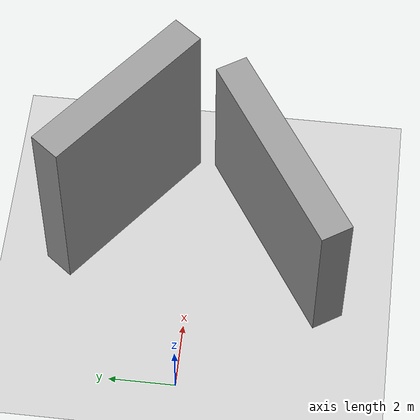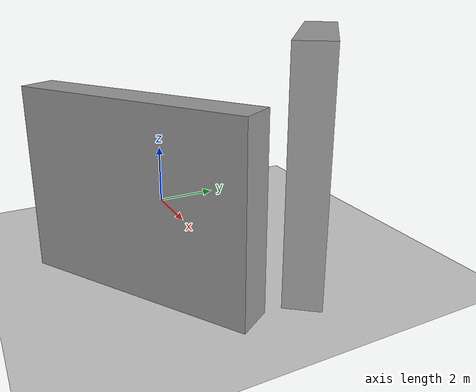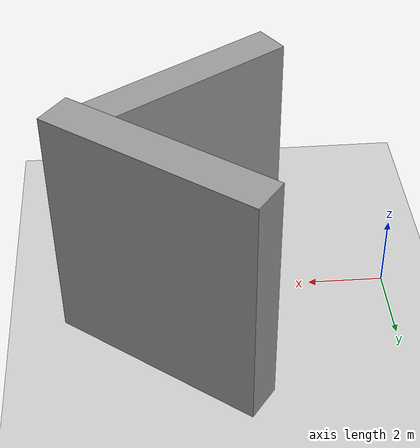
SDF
<sdf version="1.6">
 <world name="default">
  <model name="ground_plane">
   <static>1</static>
   <link name="link">
    <collision name="collision">
     <geometry><plane><normal>0 0 1</normal><size>100 100</size></plane></geometry>
     <surface>
      <contact><collide_bitmask>65535</collide_bitmask></contact>
      <friction><ode><mu>100</mu><mu2>50</mu2></ode></friction>
     </surface>
    </collision>
    <visual name="visual">
     <cast_shadows>0</cast_shadows>
     <geometry><plane><normal>0 0 1</normal><size>100 100</size></plane></geometry>
     <material>
      <script><uri>file://media/materials/scripts/gazebo.material</uri><name>Gazebo/Grey</name></script>
     </material>
    </visual>
   </link>
  </model>
  <light name="sun" type="directional">
   <pose>0 0 10 0 -0 0</pose>
   <diffuse>0.8 0.8 0.8 1</diffuse>
   <specular>0.2 0.2 0.2 1</specular>
   <attenuation>
    <range>1000</range>
    <constant>0.9</constant>
    <linear>0.01</linear>
    <quadratic>0.001</quadratic>
   </attenuation>
   <direction>-0.5 0.1 -0.9</direction>
  </light>
  <plugin name="ros_interface_plugin" filename="librotors_gazebo_ros_interface_plugin.so"/>
  <spherical_coordinates>
   <surface_model>EARTH_WGS84</surface_model>
   <latitude_deg>47.3667</latitude_deg>
   <longitude_deg>8.55</longitude_deg>
   <elevation>500</elevation>
   <heading_deg>0</heading_deg>
  </spherical_coordinates>
  <physics name="default_physics" default="0" type="ode">
   <ode>
    <solver>
     <type>quick</type>
     <iters>1000</iters>
     <sor>1.3</sor>
     <use_dynamic_moi_rescaling>0</use_dynamic_moi_rescaling>
    </solver>
    <constraints>
     <cfm>0</cfm>
     <erp>0.2</erp>
     <contact_max_correcting_vel>100</contact_max_correcting_vel>
     <contact_surface_layer>0.001</contact_surface_layer>
    </constraints>
   </ode>
   <max_step_size>0.01</max_step_size>
   <real_time_factor>1</real_time_factor>
   <real_time_update_rate>100</real_time_update_rate>
  </physics>
  <gravity>0 0 -9.8</gravity>
  <magnetic_field>6e-06 2.3e-05 -4.2e-05</magnetic_field>
  <atmosphere type="adiabatic"/>
  <scene><ambient>0.4 0.4 0.4 1</ambient><background>0.7 0.7 0.7 1</background><shadows>1</shadows></scene>
  <audio><device>default</device></audio>
  <model name="unit_box">
   <pose>5.97053 2.29671 3.24265 0.00013 -0 0.913215</pose>
   <link name="link">
    <inertial>
     <mass>1</mass>
     <inertia>
      <ixx>0.166667</ixx>
      <ixy>0</ixy>
      <ixz>0</ixz>
      <iyy>0.166667</iyy>
      <iyz>0</iyz>
      <izz>0.166667</izz>
     </inertia>
    </inertial>
    <collision name="collision"><geometry><box><size>1 5.75647 6.48604</size></box></geometry></collision>
    <visual name="visual">
     <geometry><box><size>1 5.75647 6.48604</size></box></geometry>
     <material>
      <script><name>Gazebo/Grey</name><uri>file://media/materials/scripts/gazebo.material</uri></script>
     </material>
    </visual>
   </link>
  </model>
  <model name="unit_box_1">
   <pose>5.41702 -2.52242 2.55048 2e-06 -1e-06 0.568775</pose>
   <link name="link">
    <inertial>
     <mass>1</mass>
     <inertia>
      <ixx>0.166667</ixx>
      <ixy>0</ixy>
      <ixz>0</ixz>
      <iyy>0.166667</iyy>
      <iyz>0</iyz>
      <izz>0.166667</izz>
     </inertia>
    </inertial>
    <collision name="collision"><geometry><box><size>6.59703 1 5.10095</size></box></geometry></collision>
    <visual name="visual">
     <geometry><box><size>6.59703 1 5.10095</size></box></geometry>
     <material>
      <script><name>Gazebo/Grey</name><uri>file://media/materials/scripts/gazebo.material</uri></script>
     </material>
    </visual>
   </link>
  </model>
  <light name="user_spot_light_0" type="spot">
   <pose>-0.362012 -1.66804 1 0 -0 0</pose>
   <diffuse>0.5 0.5 0.5 1</diffuse>
   <specular>0.1 0.1 0.1 1</specular>
   <direction>0 0 -1</direction>
   <attenuation>
    <range>20</range>
    <constant>0.5</constant>
    <linear>0.01</linear>
    <quadratic>0.001</quadratic>
   </attenuation>
   <cast_shadows>0</cast_shadows>
   <spot><inner_angle>0.6</inner_angle><outer_angle>1</outer_angle><falloff>1</falloff></spot>
  </light>
  <light name="user_spot_light_0_clone" type="spot">
   <pose>-0.374213 0.571953 1 0 -0 0</pose>
   <diffuse>0.498039 0.498039 0.498039 1</diffuse>
   <specular>0.0980392 0.0980392 0.0980392 1</specular>
   <direction>0 0 -1</direction>
   <attenuation>
    <range>20</range>
    <constant>0.5</constant>
    <linear>0.01</linear>
    <quadratic>0.001</quadratic>
   </attenuation>
   <cast_shadows>0</cast_shadows>
   <spot><inner_angle>0.6</inner_angle><outer_angle>1</outer_angle><falloff>1</falloff></spot>
  </light>
 </world>
</sdf>
